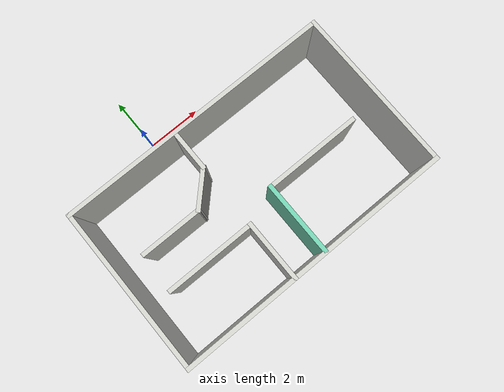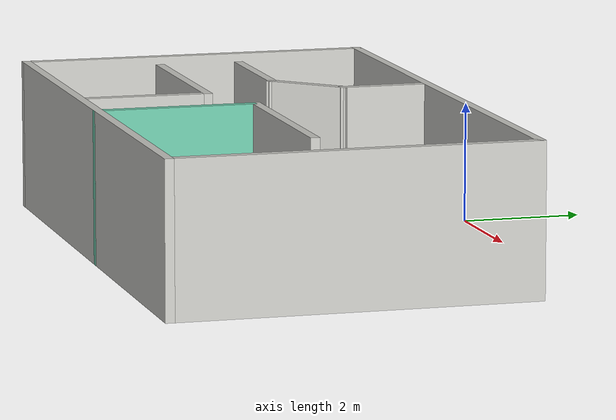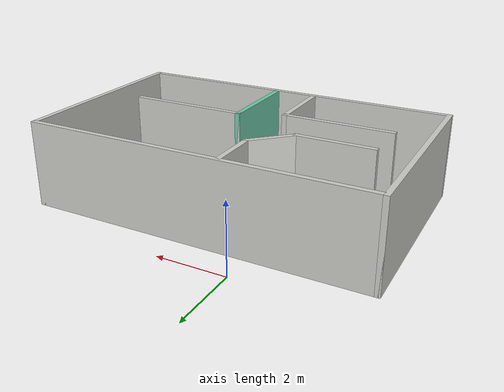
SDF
<?xml version='1.0'?>
<sdf version='1.7'>
  <model name='room'>
    <pose>1.585 -3.41765 0 0 -0 0</pose>
    <link name='Wall_0'>
      <collision name='Wall_0_Collision'>
        <geometry>
          <box>
            <size>10 0.15 2.5</size>
          </box>
        </geometry>
        <pose>0 0 1.25 0 -0 0</pose>
      </collision>
      <visual name='Wall_0_Visual'>
        <pose>0 0 1.25 0 -0 0</pose>
        <geometry>
          <box>
            <size>10 0.15 2.5</size>
          </box>
        </geometry>
        <material>
          <script>
            <uri>file://media/materials/scripts/gazebo.material</uri>
            <name>Gazebo/CeilingTiled</name>
          </script>
          <ambient>0.435294 0.796078 0.67451 1</ambient>
        </material>
        <meta>
          <layer>0</layer>
        </meta>
      </visual>
      <pose>-0 2.50765 0 0 -0 0</pose>
    </link>
    <link name='Wall_1'>
      <collision name='Wall_1_Collision'>
        <geometry>
          <box>
            <size>6 0.15 2.5</size>
          </box>
        </geometry>
        <pose>0 0 1.25 0 -0 0</pose>
      </collision>
      <visual name='Wall_1_Visual'>
        <pose>0 0 1.25 0 -0 0</pose>
        <geometry>
          <box>
            <size>6 0.15 2.5</size>
          </box>
        </geometry>
        <material>
          <script>
            <uri>file://media/materials/scripts/gazebo.material</uri>
            <name>Gazebo/CeilingTiled</name>
          </script>
          <ambient>0.435294 0.796078 0.67451 1</ambient>
        </material>
        <meta>
          <layer>0</layer>
        </meta>
      </visual>
      <pose>4.925 -0.41735 0 0 -0 -1.5708</pose>
    </link>
    <link name='Wall_10'>
      <collision name='Wall_10_Collision'>
        <geometry>
          <box>
            <size>2.25 0.15 2.5</size>
          </box>
        </geometry>
        <pose>0 0 1.25 0 -0 0</pose>
      </collision>
      <visual name='Wall_10_Visual'>
        <pose>0 0 1.25 0 -0 0</pose>
        <geometry>
          <box>
            <size>2.25 0.15 2.5</size>
          </box>
        </geometry>
        <material>
          <script>
            <uri>file://media/materials/scripts/gazebo.material</uri>
            <name>Gazebo/CeilingTiled</name>
          </script>
          <ambient>0.435294 0.796078 0.67451 1</ambient>
        </material>
        <meta>
          <layer>0</layer>
        </meta>
      </visual>
      <pose>-2.83754 0.118856 0 0 -0 3.14159</pose>
    </link>
    <link name='Wall_12'>
      <collision name='Wall_12_Collision'>
        <geometry>
          <box>
            <size>3.25 0.15 2.5</size>
          </box>
        </geometry>
        <pose>0 0 1.25 0 -0 0</pose>
      </collision>
      <visual name='Wall_12_Visual'>
        <pose>0 0 1.25 0 -0 0</pose>
        <geometry>
          <box>
            <size>3.25 0.15 2.5</size>
          </box>
        </geometry>
        <material>
          <script>
            <uri>file://media/materials/scripts/gazebo.material</uri>
            <name>Gazebo/CeilingTiled</name>
          </script>
          <ambient>0.435294 0.796078 0.67451 1</ambient>
        </material>
        <meta>
          <layer>0</layer>
        </meta>
      </visual>
      <pose>-2.39082 -1.23988 0 0 -0 0</pose>
    </link>
    <link name='Wall_13'>
      <collision name='Wall_13_Collision'>
        <geometry>
          <box>
            <size>2.25 0.15 2.5</size>
          </box>
        </geometry>
        <pose>0 0 1.25 0 -0 0</pose>
      </collision>
      <visual name='Wall_13_Visual'>
        <pose>0 0 1.25 0 -0 0</pose>
        <geometry>
          <box>
            <size>2.25 0.15 2.5</size>
          </box>
        </geometry>
        <material>
          <script>
            <uri>file://media/materials/scripts/gazebo.material</uri>
            <name>Gazebo/CeilingTiled</name>
          </script>
          <ambient>0.435294 0.796078 0.67451 1</ambient>
        </material>
        <meta>
          <layer>0</layer>
        </meta>
      </visual>
      <pose>-0.840825 -2.28987 0 0 -0 -1.5708</pose>
    </link>
    <link name='Wall_15'>
      <collision name='Wall_15_Collision'>
        <geometry>
          <box>
            <size>2.75 0.15 2.5</size>
          </box>
        </geometry>
        <pose>0 0 1.25 0 -0 0</pose>
      </collision>
      <visual name='Wall_15_Visual'>
        <pose>0 0 1.25 0 -0 0</pose>
        <geometry>
          <box>
            <size>2.75 0.15 2.5</size>
          </box>
        </geometry>
        <material>
          <script>
            <uri>file://media/materials/scripts/gazebo.material</uri>
            <name>Gazebo/Grey</name>
          </script>
          <ambient>0.435294 0.796078 0.67451 1</ambient>
        </material>
        <meta>
          <layer>0</layer>
        </meta>
      </visual>
      <pose>0.38375 -2.04265 0 0 -0 1.5708</pose>
    </link>
    <link name='Wall_16'>
      <collision name='Wall_16_Collision'>
        <geometry>
          <box>
            <size>3.5 0.15 2.5</size>
          </box>
        </geometry>
        <pose>0 0 1.25 0 -0 0</pose>
      </collision>
      <visual name='Wall_16_Visual'>
        <pose>0 0 1.25 0 -0 0</pose>
        <geometry>
          <box>
            <size>3.5 0.15 2.5</size>
          </box>
        </geometry>
        <material>
          <script>
            <uri>file://media/materials/scripts/gazebo.material</uri>
            <name>Gazebo/CeilingTiled</name>
          </script>
          <ambient>0.435294 0.796078 0.67451 1</ambient>
        </material>
        <meta>
          <layer>0</layer>
        </meta>
      </visual>
      <pose>2.05875 -0.74265 0 0 -0 0</pose>
    </link>
    <link name='Wall_4'>
      <collision name='Wall_4_Collision'>
        <geometry>
          <box>
            <size>10 0.15 2.5</size>
          </box>
        </geometry>
        <pose>0 0 1.25 0 -0 0</pose>
      </collision>
      <visual name='Wall_4_Visual'>
        <pose>0 0 1.25 0 -0 0</pose>
        <geometry>
          <box>
            <size>10 0.15 2.5</size>
          </box>
        </geometry>
        <material>
          <script>
            <uri>file://media/materials/scripts/gazebo.material</uri>
            <name>Gazebo/CeilingTiled</name>
          </script>
          <ambient>0.435294 0.796078 0.67451 1</ambient>
        </material>
        <meta>
          <layer>0</layer>
        </meta>
      </visual>
      <pose>-0 -3.34235 0 0 -0 3.14159</pose>
    </link>
    <link name='Wall_5'>
      <collision name='Wall_5_Collision'>
        <geometry>
          <box>
            <size>6 0.15 2.5</size>
          </box>
        </geometry>
        <pose>0 0 1.25 0 -0 0</pose>
      </collision>
      <visual name='Wall_5_Visual'>
        <pose>0 0 1.25 0 -0 0</pose>
        <geometry>
          <box>
            <size>6 0.15 2.5</size>
          </box>
        </geometry>
        <material>
          <script>
            <uri>file://media/materials/scripts/gazebo.material</uri>
            <name>Gazebo/CeilingTiled</name>
          </script>
          <ambient>0.435294 0.796078 0.67451 1</ambient>
        </material>
        <meta>
          <layer>0</layer>
        </meta>
      </visual>
      <pose>-4.925 -0.41735 0 0 -0 1.5708</pose>
    </link>
    <link name='Wall_8'>
      <collision name='Wall_8_Collision'>
        <geometry>
          <box>
            <size>1.5 0.15 2.5</size>
          </box>
        </geometry>
        <pose>0 0 1.25 0 -0 0</pose>
      </collision>
      <visual name='Wall_8_Visual'>
        <pose>0 0 1.25 0 -0 0</pose>
        <geometry>
          <box>
            <size>1.5 0.15 2.5</size>
          </box>
        </geometry>
        <material>
          <script>
            <uri>file://media/materials/scripts/gazebo.material</uri>
            <name>Gazebo/CeilingTiled</name>
          </script>
          <ambient>0.435294 0.796078 0.67451 1</ambient>
        </material>
        <meta>
          <layer>0</layer>
        </meta>
      </visual>
      <pose>-0.83295 1.74845 0 0 -0 -1.5708</pose>
    </link>
    <link name='Wall_9'>
      <collision name='Wall_9_Collision'>
        <geometry>
          <box>
            <size>1.5 0.15 2.5</size>
          </box>
        </geometry>
        <pose>0 0 1.25 0 -0 0</pose>
      </collision>
      <visual name='Wall_9_Visual'>
        <pose>0 0 1.25 0 -0 0</pose>
        <geometry>
          <box>
            <size>1.5 0.15 2.5</size>
          </box>
        </geometry>
        <material>
          <script>
            <uri>file://media/materials/scripts/gazebo.material</uri>
            <name>Gazebo/CeilingTiled</name>
          </script>
          <ambient>0.435294 0.796078 0.67451 1</ambient>
        </material>
        <meta>
          <layer>0</layer>
        </meta>
      </visual>
      <pose>-1.31025 0.596153 0 0 -0 -2.35619</pose>
    </link>
    <static>1</static>
  </model>
</sdf>
